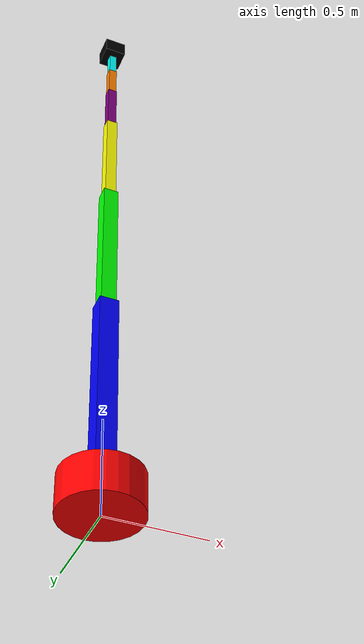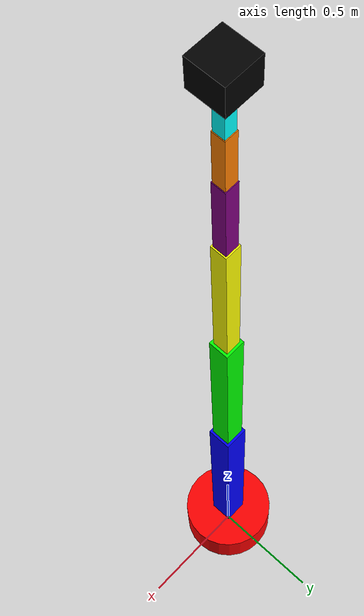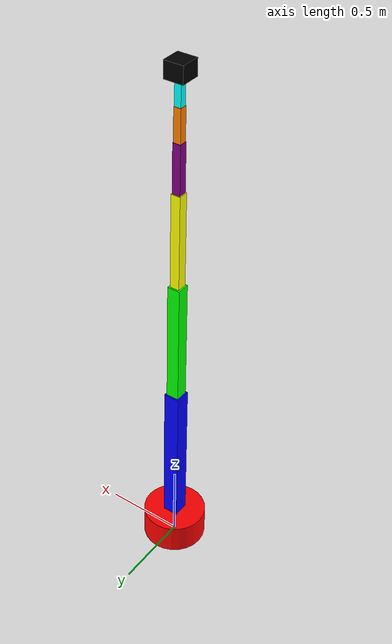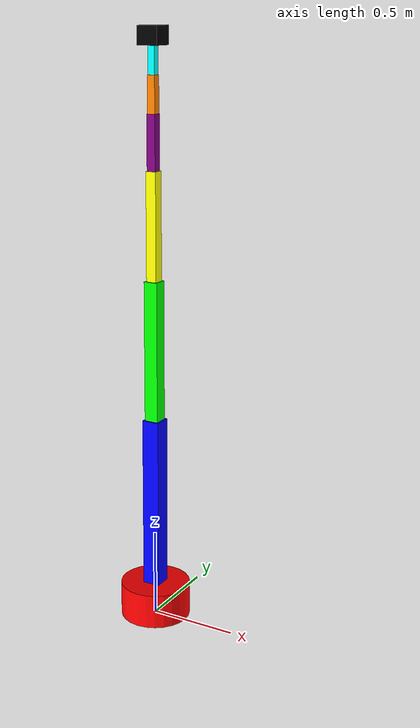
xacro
<?xml version="1.0"?>

<robot name="simple_arm" xmlns:xacro="http://www.ros.org/wiki/xacro">
<link name="world"/>

<joint name="world_to_base" type="fixed">
  <parent link="world"/>
  <child link="base_link"/>
  <origin xyz="0 0 0.1" rpy="0 0 0"/>
</joint>
  <!-- BASE LINK -->
  <link name="base_link">
    <visual>
      <geometry>
        <cylinder radius="0.2" length="0.2"/>
      </geometry>
      <material name="red">
        <color rgba="1 0 0 1"/>
      </material>
    </visual>

    <collision>
      <geometry>
        <cylinder radius="0.2" length="0.2"/>
      </geometry>
    </collision>

    <inertial>
      <mass value="2.0"/>
      <inertia ixx="0.05" ixy="0.0" ixz="0.0"
               iyy="0.05" iyz="0.0"
               izz="0.05"/>
    </inertial>
  </link>

  <!-- LINK 1 -->
  <link name="link1">
    <visual>
      <origin xyz="0 0 0.5" rpy="0 0 0"/>
      <geometry>
        <box size="0.1 0.1 1.0"/>
      </geometry>
      <material name="blue">
        <color rgba="0 0 1 1"/>
      </material>
    </visual>

    <collision>
      <origin xyz="0 0 0.5" rpy="0 0 0"/>
      <geometry>
        <box size="0.1 0.1 1.0"/>
      </geometry>
    </collision>

    <inertial>
      <origin xyz="0 0 0.5" rpy="0 0 0"/>
      <mass value="1.0"/>
      <inertia ixx="0.1" ixy="0.0" ixz="0.0"
               iyy="0.1" iyz="0.0"
               izz="0.1"/>
    </inertial>
  </link>

  <!-- LINK 2 -->
  <link name="link2">
    <visual>
      <origin xyz="0 0 0.4" rpy="0 0 0"/>
      <geometry>
        <box size="0.08 0.08 0.8"/>
      </geometry>
      <material name="green">
        <color rgba="0 1 0 1"/>
      </material>
    </visual>

    <collision>
      <origin xyz="0 0 0.4" rpy="0 0 0"/>
      <geometry>
        <box size="0.08 0.08 0.8"/>
      </geometry>
    </collision>

    <inertial>
      <origin xyz="0 0 0.4" rpy="0 0 0"/>
      <mass value="0.8"/>
      <inertia ixx="0.05" ixy="0.0" ixz="0.0"
               iyy="0.05" iyz="0.0"
               izz="0.05"/>
    </inertial>
  </link>

  <!-- LINK 3 -->
  <link name="link3">
    <visual>
      <origin xyz="0 0 0.3" rpy="0 0 0"/>
      <geometry>
        <box size="0.06 0.06 0.6"/>
      </geometry>
      <material name="yellow">
        <color rgba="1 1 0 1"/>
      </material>
    </visual>

    <collision>
      <origin xyz="0 0 0.3" rpy="0 0 0"/>
      <geometry>
        <box size="0.06 0.06 0.6"/>
      </geometry>
    </collision>

    <inertial>
      <origin xyz="0 0 0.3" rpy="0 0 0"/>
      <mass value="0.6"/>
      <inertia ixx="0.04" ixy="0.0" ixz="0.0"
               iyy="0.04" iyz="0.0"
               izz="0.04"/>
    </inertial>
  </link>

  <!-- LINK 4 -->
  <link name="link4">
    <visual>
      <origin xyz="0 0 0.15" rpy="0 0 0"/>
      <geometry>
        <box size="0.05 0.05 0.3"/>
      </geometry>
      <material name="purple">
        <color rgba="0.5 0 0.5 1"/>
      </material>
    </visual>

    <collision>
      <origin xyz="0 0 0.15" rpy="0 0 0"/>
      <geometry>
        <box size="0.05 0.05 0.3"/>
      </geometry>
    </collision>

    <inertial>
      <origin xyz="0 0 0.15" rpy="0 0 0"/>
      <mass value="0.4"/>
      <inertia ixx="0.03" ixy="0.0" ixz="0.0"
               iyy="0.03" iyz="0.0"
               izz="0.03"/>
    </inertial>
  </link>

  <!-- LINK 5 -->
  <link name="link5">
    <visual>
      <origin xyz="0 0 0.1" rpy="0 0 0"/>
      <geometry>
        <box size="0.045 0.045 0.2"/>
      </geometry>
      <material name="orange">
        <color rgba="1 0.5 0 1"/>
      </material>
    </visual>

    <collision>
      <origin xyz="0 0 0.1" rpy="0 0 0"/>
      <geometry>
        <box size="0.045 0.045 0.2"/>
      </geometry>
    </collision>

    <inertial>
      <origin xyz="0 0 0.1" rpy="0 0 0"/>
      <mass value="0.3"/>
      <inertia ixx="0.02" ixy="0.0" ixz="0.0"
               iyy="0.02" iyz="0.0"
               izz="0.02"/>
    </inertial>
  </link>

  <!-- LINK 6 -->
  <link name="link6">
    <visual>
      <origin xyz="0 0 0.075" rpy="0 0 0"/>
      <geometry>
        <box size="0.04 0.04 0.15"/>
      </geometry>
      <material name="cyan">
        <color rgba="0 1 1 1"/>
      </material>
    </visual>

    <collision>
      <origin xyz="0 0 0.075" rpy="0 0 0"/>
      <geometry>
        <box size="0.04 0.04 0.15"/>
      </geometry>
    </collision>

    <inertial>
      <origin xyz="0 0 0.075" rpy="0 0 0"/>
      <mass value="0.2"/>
      <inertia ixx="0.01" ixy="0.0" ixz="0.0"
               iyy="0.01" iyz="0.0"
               izz="0.01"/>
    </inertial>
  </link>

  <!-- END EFFECTOR -->
  <link name="end_effector_link">
    <visual>
      <origin xyz="0 0 0.05" rpy="0 0 0"/>
      <geometry>
        <box size="0.12 0.12 0.1"/>
      </geometry>
      <material name="black">
        <color rgba="0 0 0 1"/>
      </material>
    </visual>

    <collision>
      <origin xyz="0 0 0.05" rpy="0 0 0"/>
      <geometry>
        <box size="0.12 0.12 0.1"/>
      </geometry>
    </collision>

    <inertial>
      <origin xyz="0 0 0.05" rpy="0 0 0"/>
      <mass value="0.2"/>
      <inertia ixx="0.01" ixy="0.0" ixz="0.0"
               iyy="0.01" iyz="0.0"
               izz="0.01"/>
    </inertial>
  </link>

  <!-- JOINT 1: BASE ROTATION -->
  <joint name="base_to_link1_joint" type="revolute">
    <parent link="base_link"/>
    <child link="link1"/>
    <origin xyz="0 0 0.1" rpy="0 0 0"/>
    <axis xyz="0 0 1"/>
    <limit lower="-3.14" upper="3.14" effort="10" velocity="1"/>
  </joint>

  <!-- JOINT 2: SHOULDER -->
  <joint name="shoulder_joint" type="revolute">
    <parent link="link1"/>
    <child link="link2"/>
    <origin xyz="0 0 1.0" rpy="0 0 0"/>
    <axis xyz="0 1 0"/>
    <limit lower="-1.57" upper="1.57" effort="10" velocity="1"/>
  </joint>

  <!-- JOINT 3: ELBOW -->
  <joint name="elbow_joint" type="revolute">
    <parent link="link2"/>
    <child link="link3"/>
    <origin xyz="0 0 0.8" rpy="0 0 0"/>
    <axis xyz="0 1 0"/>
    <limit lower="-1.57" upper="1.57" effort="10" velocity="1"/>
  </joint>

  <!-- JOINT 4: WRIST PITCH -->
  <joint name="wrist_pitch_joint" type="revolute">
    <parent link="link3"/>
    <child link="link4"/>
    <origin xyz="0 0 0.6" rpy="0 0 0"/>
    <axis xyz="0 1 0"/>
    <limit lower="-1.57" upper="1.57" effort="10" velocity="1"/>
  </joint>

  <!-- JOINT 5: WRIST ROLL -->
  <joint name="wrist_roll_joint" type="revolute">
    <parent link="link4"/>
    <child link="link5"/>
    <origin xyz="0 0 0.3" rpy="0 0 0"/>
    <axis xyz="0 0 1"/>
    <limit lower="-3.14" upper="3.14" effort="10" velocity="1"/>
  </joint>

  <!-- JOINT 6: WRIST YAW -->
  <joint name="wrist_yaw_joint" type="revolute">
    <parent link="link5"/>
    <child link="link6"/>
    <origin xyz="0 0 0.2" rpy="0 0 0"/>
    <axis xyz="1 0 0"/>
    <limit lower="-3.14" upper="3.14" effort="10" velocity="1"/>
  </joint>

  <!-- FIXED JOINT TO END EFFECTOR -->
  <joint name="link6_to_end_effector" type="fixed">
    <parent link="link6"/>
    <child link="end_effector_link"/>
    <origin xyz="0 0 0.15" rpy="0 0 0"/>
  </joint>
<ros2_control name="GazeboSystem" type="system">

  <hardware>
    <plugin>gz_ros2_control/GazeboSimSystem</plugin>
  </hardware>

  <joint name="base_to_link1_joint">
    <command_interface name="position"/>
    <state_interface name="position"/>
    <state_interface name="velocity"/>
  </joint>

  <joint name="shoulder_joint">
    <command_interface name="position"/>
    <state_interface name="position"/>
    <state_interface name="velocity"/>
  </joint>

  <joint name="elbow_joint">
    <command_interface name="position"/>
    <state_interface name="position"/>
    <state_interface name="velocity"/>
  </joint>

  <joint name="wrist_pitch_joint">
    <command_interface name="position"/>
    <state_interface name="position"/>
    <state_interface name="velocity"/>
  </joint>

  <joint name="wrist_roll_joint">
    <command_interface name="position"/>
    <state_interface name="position"/>
    <state_interface name="velocity"/>
  </joint>

  <joint name="wrist_yaw_joint">
    <command_interface name="position"/>
    <state_interface name="position"/>
    <state_interface name="velocity"/>
  </joint>

</ros2_control>
<gazebo>
  <plugin filename="libgz_ros2_control-system.so"
          name="gz_ros2_control::GazeboSimROS2ControlPlugin">
    <parameters>$(find my_arm_description)/config/arm_controllers.yaml</parameters>
  </plugin>
</gazebo>
</robot>
